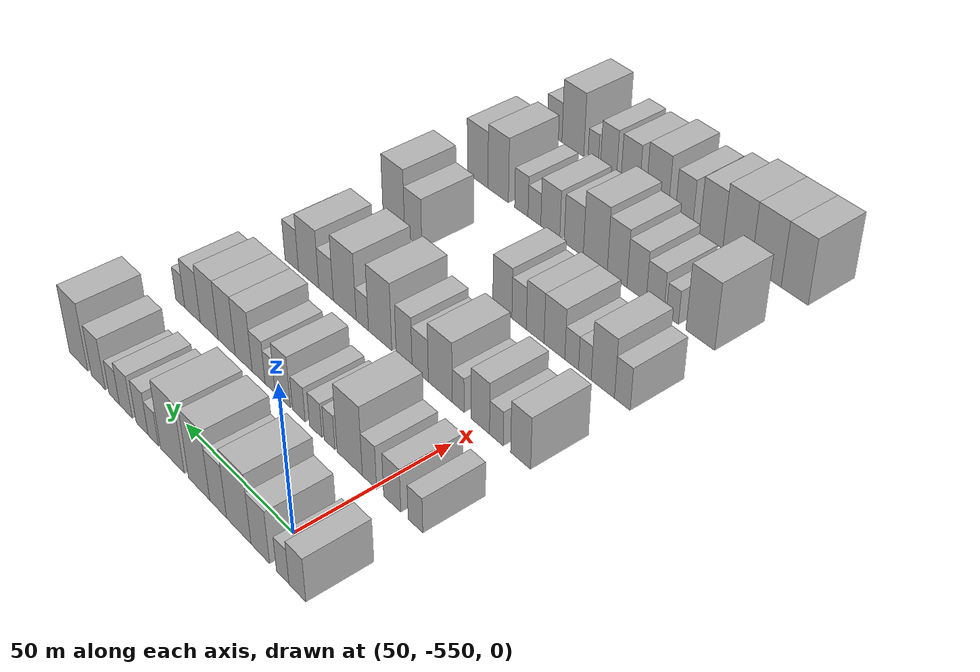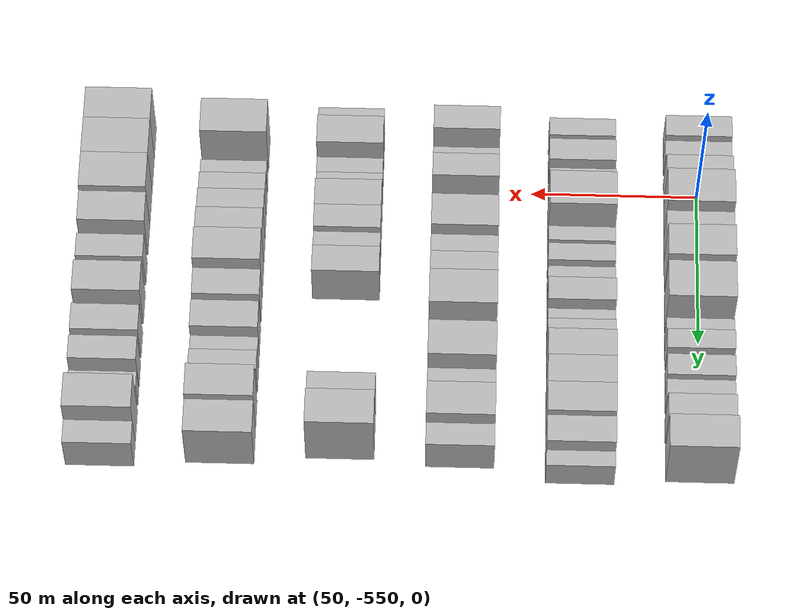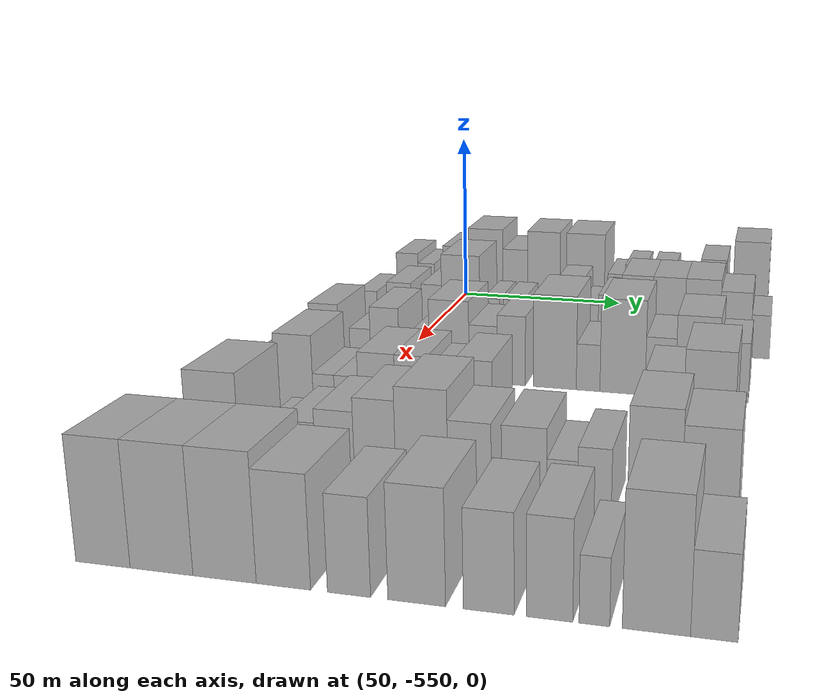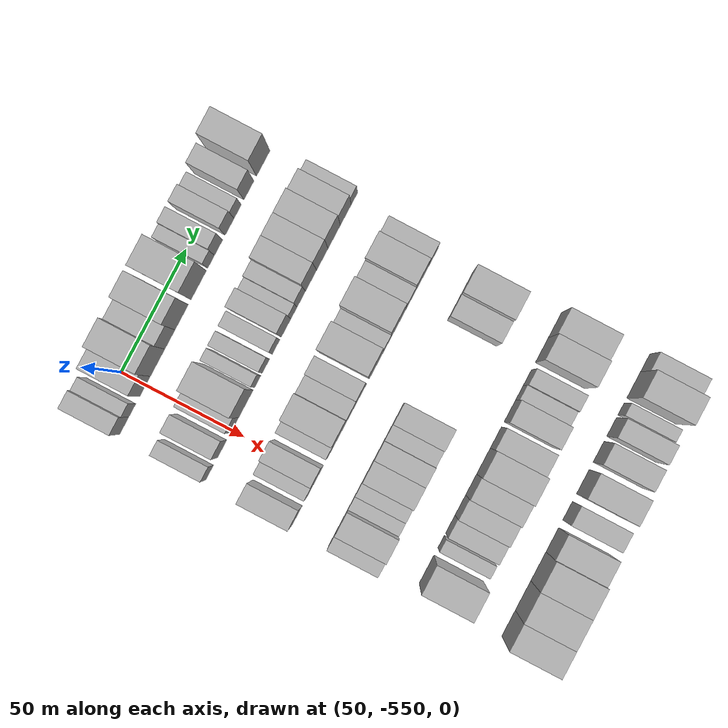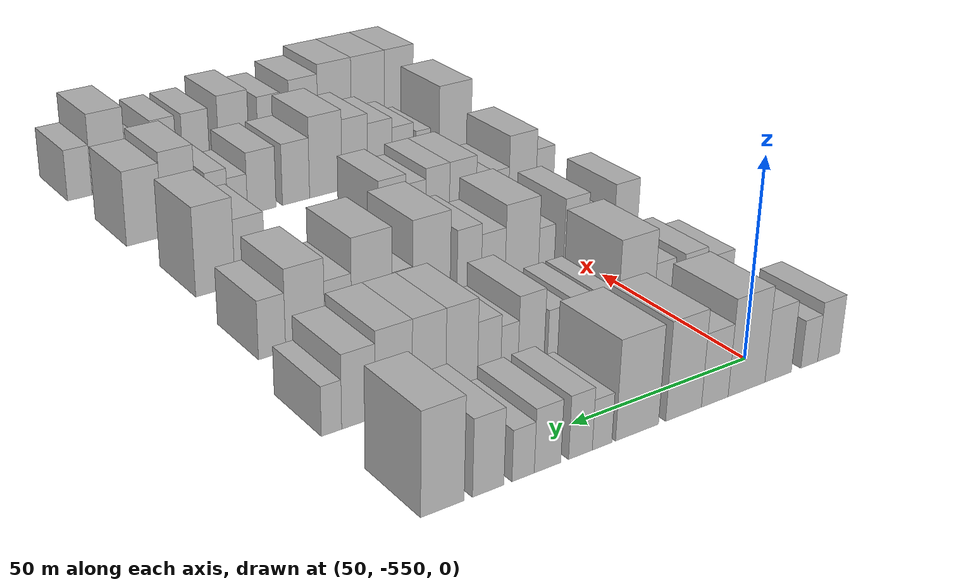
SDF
<sdf version="1.6">
 <world name="default">
  <model name="building_1">
   <static>1</static>
   <pose>50.0000 -566.4650 0 0.000000 0.000000 0.000000</pose>
   <link name="link">
    <pose>0 0 7.50 0 0 0</pose>
    <collision name="collision"><geometry><box><size>20.0000 7.0700 15.0000</size></box></geometry></collision>
    <visual name="visual">
     <cast_shadows>0</cast_shadows>
     <geometry><box><size>20.0000 7.0700 15.0000</size></box></geometry>
     <material>
      <script>
       <uri>model://HANNAS_wall/materials/scripts</uri>
       <uri>model://HANNAS_wall/materials/textures</uri>
       <name>vrc/HANNAS_wall</name>
      </script>
     </material>
    </visual>
   </link>
  </model>
  <model name="building_2">
   <static>1</static>
   <pose>50.0000 -560.2530 0 0.000000 0.000000 0.000000</pose>
   <link name="link">
    <pose>0 0 6.00 0 0 0</pose>
    <collision name="collision"><geometry><box><size>20.0000 5.3539 12.0000</size></box></geometry></collision>
    <visual name="visual">
     <cast_shadows>0</cast_shadows>
     <geometry><box><size>20.0000 5.3539 12.0000</size></box></geometry>
     <material>
      <script>
       <uri>model://HANNAS_wall/materials/scripts</uri>
       <uri>model://HANNAS_wall/materials/textures</uri>
       <name>vrc/HANNAS_wall</name>
      </script>
     </material>
    </visual>
   </link>
  </model>
  <model name="building_3">
   <static>1</static>
   <pose>50.0000 -550.4912 0 0.000000 0.000000 0.000000</pose>
   <link name="link">
    <pose>0 0 9.00 0 0 0</pose>
    <collision name="collision"><geometry><box><size>20.0000 8.1696 18.0000</size></box></geometry></collision>
    <visual name="visual">
     <cast_shadows>0</cast_shadows>
     <geometry><box><size>20.0000 8.1696 18.0000</size></box></geometry>
     <material>
      <script>
       <uri>model://HANNAS_wall/materials/scripts</uri>
       <uri>model://HANNAS_wall/materials/textures</uri>
       <name>vrc/HANNAS_wall</name>
      </script>
     </material>
    </visual>
   </link>
  </model>
  <model name="building_4">
   <static>1</static>
   <pose>50.0000 -540.8610 0 0.000000 0.000000 0.000000</pose>
   <link name="link">
    <pose>0 0 12.00 0 0 0</pose>
    <collision name="collision"><geometry><box><size>20.0000 11.0907 24.0000</size></box></geometry></collision>
    <visual name="visual">
     <cast_shadows>0</cast_shadows>
     <geometry><box><size>20.0000 11.0907 24.0000</size></box></geometry>
     <material>
      <script>
       <uri>model://HANNAS_wall/materials/scripts</uri>
       <uri>model://HANNAS_wall/materials/textures</uri>
       <name>vrc/HANNAS_wall</name>
      </script>
     </material>
    </visual>
   </link>
  </model>
  <model name="building_5">
   <static>1</static>
   <pose>50.0000 -531.4017 0 0.000000 0.000000 0.000000</pose>
   <link name="link">
    <pose>0 0 9.00 0 0 0</pose>
    <collision name="collision"><geometry><box><size>20.0000 7.8280 18.0000</size></box></geometry></collision>
    <visual name="visual">
     <cast_shadows>0</cast_shadows>
     <geometry><box><size>20.0000 7.8280 18.0000</size></box></geometry>
     <material>
      <script>
       <uri>model://HANNAS_wall/materials/scripts</uri>
       <uri>model://HANNAS_wall/materials/textures</uri>
       <name>vrc/HANNAS_wall</name>
      </script>
     </material>
    </visual>
   </link>
  </model>
  <model name="building_6">
   <static>1</static>
   <pose>50.0000 -522.3789 0 0.000000 0.000000 0.000000</pose>
   <link name="link">
    <pose>0 0 12.00 0 0 0</pose>
    <collision name="collision"><geometry><box><size>20.0000 10.2176 24.0000</size></box></geometry></collision>
    <visual name="visual">
     <cast_shadows>0</cast_shadows>
     <geometry><box><size>20.0000 10.2176 24.0000</size></box></geometry>
     <material>
      <script>
       <uri>model://HANNAS_wall/materials/scripts</uri>
       <uri>model://HANNAS_wall/materials/textures</uri>
       <name>vrc/HANNAS_wall</name>
      </script>
     </material>
    </visual>
   </link>
  </model>
  <model name="building_7">
   <static>1</static>
   <pose>50.0000 -509.3634 0 0.000000 0.000000 0.000000</pose>
   <link name="link">
    <pose>0 0 12.00 0 0 0</pose>
    <collision name="collision"><geometry><box><size>20.0000 11.8134 24.0000</size></box></geometry></collision>
    <visual name="visual">
     <cast_shadows>0</cast_shadows>
     <geometry><box><size>20.0000 11.8134 24.0000</size></box></geometry>
     <material>
      <script>
       <uri>model://HANNAS_wall/materials/scripts</uri>
       <uri>model://HANNAS_wall/materials/textures</uri>
       <name>vrc/HANNAS_wall</name>
      </script>
     </material>
    </visual>
   </link>
  </model>
  <model name="building_8">
   <static>1</static>
   <pose>50.0000 -499.8393 0 0.000000 0.000000 0.000000</pose>
   <link name="link">
    <pose>0 0 6.00 0 0 0</pose>
    <collision name="collision"><geometry><box><size>20.0000 5.2347 12.0000</size></box></geometry></collision>
    <visual name="visual">
     <cast_shadows>0</cast_shadows>
     <geometry><box><size>20.0000 5.2347 12.0000</size></box></geometry>
     <material>
      <script>
       <uri>model://HANNAS_wall/materials/scripts</uri>
       <uri>model://HANNAS_wall/materials/textures</uri>
       <name>vrc/HANNAS_wall</name>
      </script>
     </material>
    </visual>
   </link>
  </model>
  <model name="building_9">
   <static>1</static>
   <pose>50.0000 -494.1050 0 0.000000 0.000000 0.000000</pose>
   <link name="link">
    <pose>0 0 7.50 0 0 0</pose>
    <collision name="collision"><geometry><box><size>20.0000 6.2340 15.0000</size></box></geometry></collision>
    <visual name="visual">
     <cast_shadows>0</cast_shadows>
     <geometry><box><size>20.0000 6.2340 15.0000</size></box></geometry>
     <material>
      <script>
       <uri>model://HANNAS_wall/materials/scripts</uri>
       <uri>model://HANNAS_wall/materials/textures</uri>
       <name>vrc/HANNAS_wall</name>
      </script>
     </material>
    </visual>
   </link>
  </model>
  <model name="building_10">
   <static>1</static>
   <pose>50.0000 -485.5858 0 0.000000 0.000000 0.000000</pose>
   <link name="link">
    <pose>0 0 7.50 0 0 0</pose>
    <collision name="collision"><geometry><box><size>20.0000 6.8043 15.0000</size></box></geometry></collision>
    <visual name="visual">
     <cast_shadows>0</cast_shadows>
     <geometry><box><size>20.0000 6.8043 15.0000</size></box></geometry>
     <material>
      <script>
       <uri>model://HANNAS_wall/materials/scripts</uri>
       <uri>model://HANNAS_wall/materials/textures</uri>
       <name>vrc/HANNAS_wall</name>
      </script>
     </material>
    </visual>
   </link>
  </model>
  <model name="building_11">
   <static>1</static>
   <pose>50.0000 -479.3837 0 0.000000 0.000000 0.000000</pose>
   <link name="link">
    <pose>0 0 6.00 0 0 0</pose>
    <collision name="collision"><geometry><box><size>20.0000 5.6000 12.0000</size></box></geometry></collision>
    <visual name="visual">
     <cast_shadows>0</cast_shadows>
     <geometry><box><size>20.0000 5.6000 12.0000</size></box></geometry>
     <material>
      <script>
       <uri>model://HANNAS_wall/materials/scripts</uri>
       <uri>model://HANNAS_wall/materials/textures</uri>
       <name>vrc/HANNAS_wall</name>
      </script>
     </material>
    </visual>
   </link>
  </model>
  <model name="building_12">
   <static>1</static>
   <pose>50.0000 -470.7402 0 0.000000 0.000000 0.000000</pose>
   <link name="link">
    <pose>0 0 9.00 0 0 0</pose>
    <collision name="collision"><geometry><box><size>20.0000 7.6870 18.0000</size></box></geometry></collision>
    <visual name="visual">
     <cast_shadows>0</cast_shadows>
     <geometry><box><size>20.0000 7.6870 18.0000</size></box></geometry>
     <material>
      <script>
       <uri>model://HANNAS_wall/materials/scripts</uri>
       <uri>model://HANNAS_wall/materials/textures</uri>
       <name>vrc/HANNAS_wall</name>
      </script>
     </material>
    </visual>
   </link>
  </model>
  <model name="building_13">
   <static>1</static>
   <pose>50.0000 -459.7438 0 0.000000 0.000000 0.000000</pose>
   <link name="link">
    <pose>0 0 12.00 0 0 0</pose>
    <collision name="collision"><geometry><box><size>20.0000 10.3056 24.0000</size></box></geometry></collision>
    <visual name="visual">
     <cast_shadows>0</cast_shadows>
     <geometry><box><size>20.0000 10.3056 24.0000</size></box></geometry>
     <material>
      <script>
       <uri>model://HANNAS_wall/materials/scripts</uri>
       <uri>model://HANNAS_wall/materials/textures</uri>
       <name>vrc/HANNAS_wall</name>
      </script>
     </material>
    </visual>
   </link>
  </model>
  <model name="building_121">
   <static>1</static>
   <pose>85.0000 -567.0077 0 0.000000 0.000000 0.000000</pose>
   <link name="link">
    <pose>0 0 6.00 0 0 0</pose>
    <collision name="collision"><geometry><box><size>20.0000 5.9846 12.0000</size></box></geometry></collision>
    <visual name="visual">
     <cast_shadows>0</cast_shadows>
     <geometry><box><size>20.0000 5.9846 12.0000</size></box></geometry>
     <material>
      <script>
       <uri>model://HANNAS_wall/materials/scripts</uri>
       <uri>model://HANNAS_wall/materials/textures</uri>
       <name>vrc/HANNAS_wall</name>
      </script>
     </material>
    </visual>
   </link>
  </model>
  <model name="building_122">
   <static>1</static>
   <pose>85.0000 -557.4133 0 0.000000 0.000000 0.000000</pose>
   <link name="link">
    <pose>0 0 7.50 0 0 0</pose>
    <collision name="collision"><geometry><box><size>20.0000 7.2042 15.0000</size></box></geometry></collision>
    <visual name="visual">
     <cast_shadows>0</cast_shadows>
     <geometry><box><size>20.0000 7.2042 15.0000</size></box></geometry>
     <material>
      <script>
       <uri>model://HANNAS_wall/materials/scripts</uri>
       <uri>model://HANNAS_wall/materials/textures</uri>
       <name>vrc/HANNAS_wall</name>
      </script>
     </material>
    </visual>
   </link>
  </model>
  <model name="building_123">
   <static>1</static>
   <pose>85.0000 -547.7533 0 0.000000 0.000000 0.000000</pose>
   <link name="link">
    <pose>0 0 7.50 0 0 0</pose>
    <collision name="collision"><geometry><box><size>20.0000 6.1158 15.0000</size></box></geometry></collision>
    <visual name="visual">
     <cast_shadows>0</cast_shadows>
     <geometry><box><size>20.0000 6.1158 15.0000</size></box></geometry>
     <material>
      <script>
       <uri>model://HANNAS_wall/materials/scripts</uri>
       <uri>model://HANNAS_wall/materials/textures</uri>
       <name>vrc/HANNAS_wall</name>
      </script>
     </material>
    </visual>
   </link>
  </model>
  <model name="building_124">
   <static>1</static>
   <pose>85.0000 -539.1208 0 0.000000 0.000000 0.000000</pose>
   <link name="link">
    <pose>0 0 12.00 0 0 0</pose>
    <collision name="collision"><geometry><box><size>20.0000 11.1494 24.0000</size></box></geometry></collision>
    <visual name="visual">
     <cast_shadows>0</cast_shadows>
     <geometry><box><size>20.0000 11.1494 24.0000</size></box></geometry>
     <material>
      <script>
       <uri>model://HANNAS_wall/materials/scripts</uri>
       <uri>model://HANNAS_wall/materials/textures</uri>
       <name>vrc/HANNAS_wall</name>
      </script>
     </material>
    </visual>
   </link>
  </model>
  <model name="building_125">
   <static>1</static>
   <pose>85.0000 -530.1311 0 0.000000 0.000000 0.000000</pose>
   <link name="link">
    <pose>0 0 6.00 0 0 0</pose>
    <collision name="collision"><geometry><box><size>20.0000 4.8299 12.0000</size></box></geometry></collision>
    <visual name="visual">
     <cast_shadows>0</cast_shadows>
     <geometry><box><size>20.0000 4.8299 12.0000</size></box></geometry>
     <material>
      <script>
       <uri>model://HANNAS_wall/materials/scripts</uri>
       <uri>model://HANNAS_wall/materials/textures</uri>
       <name>vrc/HANNAS_wall</name>
      </script>
     </material>
    </visual>
   </link>
  </model>
  <model name="building_126">
   <static>1</static>
   <pose>85.0000 -523.8381 0 0.000000 0.000000 0.000000</pose>
   <link name="link">
    <pose>0 0 6.00 0 0 0</pose>
    <collision name="collision"><geometry><box><size>20.0000 5.7561 12.0000</size></box></geometry></collision>
    <visual name="visual">
     <cast_shadows>0</cast_shadows>
     <geometry><box><size>20.0000 5.7561 12.0000</size></box></geometry>
     <material>
      <script>
       <uri>model://HANNAS_wall/materials/scripts</uri>
       <uri>model://HANNAS_wall/materials/textures</uri>
       <name>vrc/HANNAS_wall</name>
      </script>
     </material>
    </visual>
   </link>
  </model>
  <model name="building_127">
   <static>1</static>
   <pose>85.0000 -516.0000 0 0.000000 0.000000 0.000000</pose>
   <link name="link">
    <pose>0 0 6.00 0 0 0</pose>
    <collision name="collision"><geometry><box><size>20.0000 5.9202 12.0000</size></box></geometry></collision>
    <visual name="visual">
     <cast_shadows>0</cast_shadows>
     <geometry><box><size>20.0000 5.9202 12.0000</size></box></geometry>
     <material>
      <script>
       <uri>model://HANNAS_wall/materials/scripts</uri>
       <uri>model://HANNAS_wall/materials/textures</uri>
       <name>vrc/HANNAS_wall</name>
      </script>
     </material>
    </visual>
   </link>
  </model>
  <model name="building_128">
   <static>1</static>
   <pose>85.0000 -508.3366 0 0.000000 0.000000 0.000000</pose>
   <link name="link">
    <pose>0 0 9.00 0 0 0</pose>
    <collision name="collision"><geometry><box><size>20.0000 7.4066 18.0000</size></box></geometry></collision>
    <visual name="visual">
     <cast_shadows>0</cast_shadows>
     <geometry><box><size>20.0000 7.4066 18.0000</size></box></geometry>
     <material>
      <script>
       <uri>model://HANNAS_wall/materials/scripts</uri>
       <uri>model://HANNAS_wall/materials/textures</uri>
       <name>vrc/HANNAS_wall</name>
      </script>
     </material>
    </visual>
   </link>
  </model>
  <model name="building_129">
   <static>1</static>
   <pose>85.0000 -502.2137 0 0.000000 0.000000 0.000000</pose>
   <link name="link">
    <pose>0 0 6.00 0 0 0</pose>
    <collision name="collision"><geometry><box><size>20.0000 4.8391 12.0000</size></box></geometry></collision>
    <visual name="visual">
     <cast_shadows>0</cast_shadows>
     <geometry><box><size>20.0000 4.8391 12.0000</size></box></geometry>
     <material>
      <script>
       <uri>model://HANNAS_wall/materials/scripts</uri>
       <uri>model://HANNAS_wall/materials/textures</uri>
       <name>vrc/HANNAS_wall</name>
      </script>
     </material>
    </visual>
   </link>
  </model>
  <model name="building_130">
   <static>1</static>
   <pose>85.0000 -496.5951 0 0.000000 0.000000 0.000000</pose>
   <link name="link">
    <pose>0 0 7.50 0 0 0</pose>
    <collision name="collision"><geometry><box><size>20.0000 6.3980 15.0000</size></box></geometry></collision>
    <visual name="visual">
     <cast_shadows>0</cast_shadows>
     <geometry><box><size>20.0000 6.3980 15.0000</size></box></geometry>
     <material>
      <script>
       <uri>model://HANNAS_wall/materials/scripts</uri>
       <uri>model://HANNAS_wall/materials/textures</uri>
       <name>vrc/HANNAS_wall</name>
      </script>
     </material>
    </visual>
   </link>
  </model>
  <model name="building_131">
   <static>1</static>
   <pose>85.0000 -489.1297 0 0.000000 0.000000 0.000000</pose>
   <link name="link">
    <pose>0 0 10.50 0 0 0</pose>
    <collision name="collision"><geometry><box><size>20.0000 8.5328 21.0000</size></box></geometry></collision>
    <visual name="visual">
     <cast_shadows>0</cast_shadows>
     <geometry><box><size>20.0000 8.5328 21.0000</size></box></geometry>
     <material>
      <script>
       <uri>model://HANNAS_wall/materials/scripts</uri>
       <uri>model://HANNAS_wall/materials/textures</uri>
       <name>vrc/HANNAS_wall</name>
      </script>
     </material>
    </visual>
   </link>
  </model>
  <model name="building_132">
   <static>1</static>
   <pose>85.0000 -480.4655 0 0.000000 0.000000 0.000000</pose>
   <link name="link">
    <pose>0 0 10.50 0 0 0</pose>
    <collision name="collision"><geometry><box><size>20.0000 8.7956 21.0000</size></box></geometry></collision>
    <visual name="visual">
     <cast_shadows>0</cast_shadows>
     <geometry><box><size>20.0000 8.7956 21.0000</size></box></geometry>
     <material>
      <script>
       <uri>model://HANNAS_wall/materials/scripts</uri>
       <uri>model://HANNAS_wall/materials/textures</uri>
       <name>vrc/HANNAS_wall</name>
      </script>
     </material>
    </visual>
   </link>
  </model>
  <model name="building_133">
   <static>1</static>
   <pose>85.0000 -471.3481 0 0.000000 0.000000 0.000000</pose>
   <link name="link">
    <pose>0 0 10.50 0 0 0</pose>
    <collision name="collision"><geometry><box><size>20.0000 9.4392 21.0000</size></box></geometry></collision>
    <visual name="visual">
     <cast_shadows>0</cast_shadows>
     <geometry><box><size>20.0000 9.4392 21.0000</size></box></geometry>
     <material>
      <script>
       <uri>model://HANNAS_wall/materials/scripts</uri>
       <uri>model://HANNAS_wall/materials/textures</uri>
       <name>vrc/HANNAS_wall</name>
      </script>
     </material>
    </visual>
   </link>
  </model>
  <model name="building_134">
   <static>1</static>
   <pose>85.0000 -462.4477 0 0.000000 0.000000 0.000000</pose>
   <link name="link">
    <pose>0 0 9.00 0 0 0</pose>
    <collision name="collision"><geometry><box><size>20.0000 8.3616 18.0000</size></box></geometry></collision>
    <visual name="visual">
     <cast_shadows>0</cast_shadows>
     <geometry><box><size>20.0000 8.3616 18.0000</size></box></geometry>
     <material>
      <script>
       <uri>model://HANNAS_wall/materials/scripts</uri>
       <uri>model://HANNAS_wall/materials/textures</uri>
       <name>vrc/HANNAS_wall</name>
      </script>
     </material>
    </visual>
   </link>
  </model>
  <model name="building_135">
   <static>1</static>
   <pose>85.0000 -455.7711 0 0.000000 0.000000 0.000000</pose>
   <link name="link">
    <pose>0 0 6.00 0 0 0</pose>
    <collision name="collision"><geometry><box><size>20.0000 4.9917 12.0000</size></box></geometry></collision>
    <visual name="visual">
     <cast_shadows>0</cast_shadows>
     <geometry><box><size>20.0000 4.9917 12.0000</size></box></geometry>
     <material>
      <script>
       <uri>model://HANNAS_wall/materials/scripts</uri>
       <uri>model://HANNAS_wall/materials/textures</uri>
       <name>vrc/HANNAS_wall</name>
      </script>
     </material>
    </visual>
   </link>
  </model>
  <model name="building_244">
   <static>1</static>
   <pose>120.0000 -565.9971 0 0.000000 0.000000 0.000000</pose>
   <link name="link">
    <pose>0 0 9.00 0 0 0</pose>
    <collision name="collision"><geometry><box><size>20.0000 8.0059 18.0000</size></box></geometry></collision>
    <visual name="visual">
     <cast_shadows>0</cast_shadows>
     <geometry><box><size>20.0000 8.0059 18.0000</size></box></geometry>
     <material>
      <script>
       <uri>model://HANNAS_wall/materials/scripts</uri>
       <uri>model://HANNAS_wall/materials/textures</uri>
       <name>vrc/HANNAS_wall</name>
      </script>
     </material>
    </visual>
   </link>
  </model>
  <model name="building_245">
   <static>1</static>
   <pose>120.0000 -556.1825 0 0.000000 0.000000 0.000000</pose>
   <link name="link">
    <pose>0 0 6.00 0 0 0</pose>
    <collision name="collision"><geometry><box><size>20.0000 5.6234 12.0000</size></box></geometry></collision>
    <visual name="visual">
     <cast_shadows>0</cast_shadows>
     <geometry><box><size>20.0000 5.6234 12.0000</size></box></geometry>
     <material>
      <script>
       <uri>model://HANNAS_wall/materials/scripts</uri>
       <uri>model://HANNAS_wall/materials/textures</uri>
       <name>vrc/HANNAS_wall</name>
      </script>
     </material>
    </visual>
   </link>
  </model>
  <model name="building_246">
   <static>1</static>
   <pose>120.0000 -549.5215 0 0.000000 0.000000 0.000000</pose>
   <link name="link">
    <pose>0 0 9.00 0 0 0</pose>
    <collision name="collision"><geometry><box><size>20.0000 7.6986 18.0000</size></box></geometry></collision>
    <visual name="visual">
     <cast_shadows>0</cast_shadows>
     <geometry><box><size>20.0000 7.6986 18.0000</size></box></geometry>
     <material>
      <script>
       <uri>model://HANNAS_wall/materials/scripts</uri>
       <uri>model://HANNAS_wall/materials/textures</uri>
       <name>vrc/HANNAS_wall</name>
      </script>
     </material>
    </visual>
   </link>
  </model>
  <model name="building_247">
   <static>1</static>
   <pose>120.0000 -540.1420 0 0.000000 0.000000 0.000000</pose>
   <link name="link">
    <pose>0 0 6.00 0 0 0</pose>
    <collision name="collision"><geometry><box><size>20.0000 5.0602 12.0000</size></box></geometry></collision>
    <visual name="visual">
     <cast_shadows>0</cast_shadows>
     <geometry><box><size>20.0000 5.0602 12.0000</size></box></geometry>
     <material>
      <script>
       <uri>model://HANNAS_wall/materials/scripts</uri>
       <uri>model://HANNAS_wall/materials/textures</uri>
       <name>vrc/HANNAS_wall</name>
      </script>
     </material>
    </visual>
   </link>
  </model>
  <model name="building_248">
   <static>1</static>
   <pose>120.0000 -532.3767 0 0.000000 0.000000 0.000000</pose>
   <link name="link">
    <pose>0 0 10.50 0 0 0</pose>
    <collision name="collision"><geometry><box><size>20.0000 10.4704 21.0000</size></box></geometry></collision>
    <visual name="visual">
     <cast_shadows>0</cast_shadows>
     <geometry><box><size>20.0000 10.4704 21.0000</size></box></geometry>
     <material>
      <script>
       <uri>model://HANNAS_wall/materials/scripts</uri>
       <uri>model://HANNAS_wall/materials/textures</uri>
       <name>vrc/HANNAS_wall</name>
      </script>
     </material>
    </visual>
   </link>
  </model>
  <model name="building_249">
   <static>1</static>
   <pose>120.0000 -523.5001 0 0.000000 0.000000 0.000000</pose>
   <link name="link">
    <pose>0 0 7.50 0 0 0</pose>
    <collision name="collision"><geometry><box><size>20.0000 7.2828 15.0000</size></box></geometry></collision>
    <visual name="visual">
     <cast_shadows>0</cast_shadows>
     <geometry><box><size>20.0000 7.2828 15.0000</size></box></geometry>
     <material>
      <script>
       <uri>model://HANNAS_wall/materials/scripts</uri>
       <uri>model://HANNAS_wall/materials/textures</uri>
       <name>vrc/HANNAS_wall</name>
      </script>
     </material>
    </visual>
   </link>
  </model>
  <model name="building_250">
   <static>1</static>
   <pose>120.0000 -516.2054 0 0.000000 0.000000 0.000000</pose>
   <link name="link">
    <pose>0 0 9.00 0 0 0</pose>
    <collision name="collision"><geometry><box><size>20.0000 7.3066 18.0000</size></box></geometry></collision>
    <visual name="visual">
     <cast_shadows>0</cast_shadows>
     <geometry><box><size>20.0000 7.3066 18.0000</size></box></geometry>
     <material>
      <script>
       <uri>model://HANNAS_wall/materials/scripts</uri>
       <uri>model://HANNAS_wall/materials/textures</uri>
       <name>vrc/HANNAS_wall</name>
      </script>
     </material>
    </visual>
   </link>
  </model>
  <model name="building_251">
   <static>1</static>
   <pose>120.0000 -505.0666 0 0.000000 0.000000 0.000000</pose>
   <link name="link">
    <pose>0 0 12.00 0 0 0</pose>
    <collision name="collision"><geometry><box><size>20.0000 10.9710 24.0000</size></box></geometry></collision>
    <visual name="visual">
     <cast_shadows>0</cast_shadows>
     <geometry><box><size>20.0000 10.9710 24.0000</size></box></geometry>
     <material>
      <script>
       <uri>model://HANNAS_wall/materials/scripts</uri>
       <uri>model://HANNAS_wall/materials/textures</uri>
       <name>vrc/HANNAS_wall</name>
      </script>
     </material>
    </visual>
   </link>
  </model>
  <model name="building_252">
   <static>1</static>
   <pose>120.0000 -496.6197 0 0.000000 0.000000 0.000000</pose>
   <link name="link">
    <pose>0 0 6.00 0 0 0</pose>
    <collision name="collision"><geometry><box><size>20.0000 5.9229 12.0000</size></box></geometry></collision>
    <visual name="visual">
     <cast_shadows>0</cast_shadows>
     <geometry><box><size>20.0000 5.9229 12.0000</size></box></geometry>
     <material>
      <script>
       <uri>model://HANNAS_wall/materials/scripts</uri>
       <uri>model://HANNAS_wall/materials/textures</uri>
       <name>vrc/HANNAS_wall</name>
      </script>
     </material>
    </visual>
   </link>
  </model>
  <model name="building_253">
   <static>1</static>
   <pose>120.0000 -488.0682 0 0.000000 0.000000 0.000000</pose>
   <link name="link">
    <pose>0 0 12.00 0 0 0</pose>
    <collision name="collision"><geometry><box><size>20.0000 11.1801 24.0000</size></box></geometry></collision>
    <visual name="visual">
     <cast_shadows>0</cast_shadows>
     <geometry><box><size>20.0000 11.1801 24.0000</size></box></geometry>
     <material>
      <script>
       <uri>model://HANNAS_wall/materials/scripts</uri>
       <uri>model://HANNAS_wall/materials/textures</uri>
       <name>vrc/HANNAS_wall</name>
      </script>
     </material>
    </visual>
   </link>
  </model>
  <model name="building_254">
   <static>1</static>
   <pose>120.0000 -478.8063 0 0.000000 0.000000 0.000000</pose>
   <link name="link">
    <pose>0 0 7.50 0 0 0</pose>
    <collision name="collision"><geometry><box><size>20.0000 7.3438 15.0000</size></box></geometry></collision>
    <visual name="visual">
     <cast_shadows>0</cast_shadows>
     <geometry><box><size>20.0000 7.3438 15.0000</size></box></geometry>
     <material>
      <script>
       <uri>model://HANNAS_wall/materials/scripts</uri>
       <uri>model://HANNAS_wall/materials/textures</uri>
       <name>vrc/HANNAS_wall</name>
      </script>
     </material>
    </visual>
   </link>
  </model>
  <model name="building_255">
   <static>1</static>
   <pose>120.0000 -469.9217 0 0.000000 0.000000 0.000000</pose>
   <link name="link">
    <pose>0 0 10.50 0 0 0</pose>
    <collision name="collision"><geometry><box><size>20.0000 10.4254 21.0000</size></box></geometry></collision>
    <visual name="visual">
     <cast_shadows>0</cast_shadows>
     <geometry><box><size>20.0000 10.4254 21.0000</size></box></geometry>
     <material>
      <script>
       <uri>model://HANNAS_wall/materials/scripts</uri>
       <uri>model://HANNAS_wall/materials/textures</uri>
       <name>vrc/HANNAS_wall</name>
      </script>
     </material>
    </visual>
   </link>
  </model>
  <model name="building_256">
   <static>1</static>
   <pose>120.0000 -461.1677 0 0.000000 0.000000 0.000000</pose>
   <link name="link">
    <pose>0 0 7.50 0 0 0</pose>
    <collision name="collision"><geometry><box><size>20.0000 7.0825 15.0000</size></box></geometry></collision>
    <visual name="visual">
     <cast_shadows>0</cast_shadows>
     <geometry><box><size>20.0000 7.0825 15.0000</size></box></geometry>
     <material>
      <script>
       <uri>model://HANNAS_wall/materials/scripts</uri>
       <uri>model://HANNAS_wall/materials/textures</uri>
       <name>vrc/HANNAS_wall</name>
      </script>
     </material>
    </visual>
   </link>
  </model>
  <model name="building_376">
   <static>1</static>
   <pose>155.0000 -566.9062 0 0.000000 0.000000 0.000000</pose>
   <link name="link">
    <pose>0 0 7.50 0 0 0</pose>
    <collision name="collision"><geometry><box><size>20.0000 6.1877 15.0000</size></box></geometry></collision>
    <visual name="visual">
     <cast_shadows>0</cast_shadows>
     <geometry><box><size>20.0000 6.1877 15.0000</size></box></geometry>
     <material>
      <script>
       <uri>model://HANNAS_wall/materials/scripts</uri>
       <uri>model://HANNAS_wall/materials/textures</uri>
       <name>vrc/HANNAS_wall</name>
      </script>
     </material>
    </visual>
   </link>
  </model>
  <model name="building_377">
   <static>1</static>
   <pose>155.0000 -559.1406 0 0.000000 0.000000 0.000000</pose>
   <link name="link">
    <pose>0 0 10.50 0 0 0</pose>
    <collision name="collision"><geometry><box><size>20.0000 9.3434 21.0000</size></box></geometry></collision>
    <visual name="visual">
     <cast_shadows>0</cast_shadows>
     <geometry><box><size>20.0000 9.3434 21.0000</size></box></geometry>
     <material>
      <script>
       <uri>model://HANNAS_wall/materials/scripts</uri>
       <uri>model://HANNAS_wall/materials/textures</uri>
       <name>vrc/HANNAS_wall</name>
      </script>
     </material>
    </visual>
   </link>
  </model>
  <model name="building_378">
   <static>1</static>
   <pose>155.0000 -551.8834 0 0.000000 0.000000 0.000000</pose>
   <link name="link">
    <pose>0 0 6.00 0 0 0</pose>
    <collision name="collision"><geometry><box><size>20.0000 5.1710 12.0000</size></box></geometry></collision>
    <visual name="visual">
     <cast_shadows>0</cast_shadows>
     <geometry><box><size>20.0000 5.1710 12.0000</size></box></geometry>
     <material>
      <script>
       <uri>model://HANNAS_wall/materials/scripts</uri>
       <uri>model://HANNAS_wall/materials/textures</uri>
       <name>vrc/HANNAS_wall</name>
      </script>
     </material>
    </visual>
   </link>
  </model>
  <model name="building_379">
   <static>1</static>
   <pose>155.0000 -546.4406 0 0.000000 0.000000 0.000000</pose>
   <link name="link">
    <pose>0 0 6.00 0 0 0</pose>
    <collision name="collision"><geometry><box><size>20.0000 5.7145 12.0000</size></box></geometry></collision>
    <visual name="visual">
     <cast_shadows>0</cast_shadows>
     <geometry><box><size>20.0000 5.7145 12.0000</size></box></geometry>
     <material>
      <script>
       <uri>model://HANNAS_wall/materials/scripts</uri>
       <uri>model://HANNAS_wall/materials/textures</uri>
       <name>vrc/HANNAS_wall</name>
      </script>
     </material>
    </visual>
   </link>
  </model>
  <model name="building_380">
   <static>1</static>
   <pose>155.0000 -539.1959 0 0.000000 0.000000 0.000000</pose>
   <link name="link">
    <pose>0 0 9.00 0 0 0</pose>
    <collision name="collision"><geometry><box><size>20.0000 8.7748 18.0000</size></box></geometry></collision>
    <visual name="visual">
     <cast_shadows>0</cast_shadows>
     <geometry><box><size>20.0000 8.7748 18.0000</size></box></geometry>
     <material>
      <script>
       <uri>model://HANNAS_wall/materials/scripts</uri>
       <uri>model://HANNAS_wall/materials/textures</uri>
       <name>vrc/HANNAS_wall</name>
      </script>
     </material>
    </visual>
   </link>
  </model>
  <model name="building_381">
   <static>1</static>
   <pose>155.0000 -530.9807 0 0.000000 0.000000 0.000000</pose>
   <link name="link">
    <pose>0 0 9.00 0 0 0</pose>
    <collision name="collision"><geometry><box><size>20.0000 7.6556 18.0000</size></box></geometry></collision>
    <visual name="visual">
     <cast_shadows>0</cast_shadows>
     <geometry><box><size>20.0000 7.6556 18.0000</size></box></geometry>
     <material>
      <script>
       <uri>model://HANNAS_wall/materials/scripts</uri>
       <uri>model://HANNAS_wall/materials/textures</uri>
       <name>vrc/HANNAS_wall</name>
      </script>
     </material>
    </visual>
   </link>
  </model>
  <model name="building_382">
   <static>1</static>
   <pose>155.0000 -523.9910 0 0.000000 0.000000 0.000000</pose>
   <link name="link">
    <pose>0 0 7.50 0 0 0</pose>
    <collision name="collision"><geometry><box><size>20.0000 6.3239 15.0000</size></box></geometry></collision>
    <visual name="visual">
     <cast_shadows>0</cast_shadows>
     <geometry><box><size>20.0000 6.3239 15.0000</size></box></geometry>
     <material>
      <script>
       <uri>model://HANNAS_wall/materials/scripts</uri>
       <uri>model://HANNAS_wall/materials/textures</uri>
       <name>vrc/HANNAS_wall</name>
      </script>
     </material>
    </visual>
   </link>
  </model>
  <model name="building_383">
   <static>1</static>
   <pose>155.0000 -516.5709 0 0.000000 0.000000 0.000000</pose>
   <link name="link">
    <pose>0 0 9.00 0 0 0</pose>
    <collision name="collision"><geometry><box><size>20.0000 8.5163 18.0000</size></box></geometry></collision>
    <visual name="visual">
     <cast_shadows>0</cast_shadows>
     <geometry><box><size>20.0000 8.5163 18.0000</size></box></geometry>
     <material>
      <script>
       <uri>model://HANNAS_wall/materials/scripts</uri>
       <uri>model://HANNAS_wall/materials/textures</uri>
       <name>vrc/HANNAS_wall</name>
      </script>
     </material>
    </visual>
   </link>
  </model>
  <model name="building_384">
   <static>1</static>
   <pose>155.0000 -474.5777 0 0.000000 0.000000 0.000000</pose>
   <link name="link">
    <pose>0 0 9.00 0 0 0</pose>
    <collision name="collision"><geometry><box><size>20.0000 8.4900 18.0000</size></box></geometry></collision>
    <visual name="visual">
     <cast_shadows>0</cast_shadows>
     <geometry><box><size>20.0000 8.4900 18.0000</size></box></geometry>
     <material>
      <script>
       <uri>model://HANNAS_wall/materials/scripts</uri>
       <uri>model://HANNAS_wall/materials/textures</uri>
       <name>vrc/HANNAS_wall</name>
      </script>
     </material>
    </visual>
   </link>
  </model>
  <model name="building_385">
   <static>1</static>
   <pose>155.0000 -464.9130 0 0.000000 0.000000 0.000000</pose>
   <link name="link">
    <pose>0 0 12.00 0 0 0</pose>
    <collision name="collision"><geometry><box><size>20.0000 10.8395 24.0000</size></box></geometry></collision>
    <visual name="visual">
     <cast_shadows>0</cast_shadows>
     <geometry><box><size>20.0000 10.8395 24.0000</size></box></geometry>
     <material>
      <script>
       <uri>model://HANNAS_wall/materials/scripts</uri>
       <uri>model://HANNAS_wall/materials/textures</uri>
       <name>vrc/HANNAS_wall</name>
      </script>
     </material>
    </visual>
   </link>
  </model>
  <model name="building_497">
   <static>1</static>
   <pose>190.0000 -561.3066 0 0.000000 0.000000 0.000000</pose>
   <link name="link">
    <pose>0 0 12.00 0 0 0</pose>
    <collision name="collision"><geometry><box><size>20.0000 11.3867 24.0000</size></box></geometry></collision>
    <visual name="visual">
     <cast_shadows>0</cast_shadows>
     <geometry><box><size>20.0000 11.3867 24.0000</size></box></geometry>
     <material>
      <script>
       <uri>model://HANNAS_wall/materials/scripts</uri>
       <uri>model://HANNAS_wall/materials/textures</uri>
       <name>vrc/HANNAS_wall</name>
      </script>
     </material>
    </visual>
   </link>
  </model>
  <model name="building_498">
   <static>1</static>
   <pose>190.0000 -550.1297 0 0.000000 0.000000 0.000000</pose>
   <link name="link">
    <pose>0 0 6.00 0 0 0</pose>
    <collision name="collision"><geometry><box><size>20.0000 4.9671 12.0000</size></box></geometry></collision>
    <visual name="visual">
     <cast_shadows>0</cast_shadows>
     <geometry><box><size>20.0000 4.9671 12.0000</size></box></geometry>
     <material>
      <script>
       <uri>model://HANNAS_wall/materials/scripts</uri>
       <uri>model://HANNAS_wall/materials/textures</uri>
       <name>vrc/HANNAS_wall</name>
      </script>
     </material>
    </visual>
   </link>
  </model>
  <model name="building_499">
   <static>1</static>
   <pose>190.0000 -542.9979 0 0.000000 0.000000 0.000000</pose>
   <link name="link">
    <pose>0 0 7.50 0 0 0</pose>
    <collision name="collision"><geometry><box><size>20.0000 7.2965 15.0000</size></box></geometry></collision>
    <visual name="visual">
     <cast_shadows>0</cast_shadows>
     <geometry><box><size>20.0000 7.2965 15.0000</size></box></geometry>
     <material>
      <script>
       <uri>model://HANNAS_wall/materials/scripts</uri>
       <uri>model://HANNAS_wall/materials/textures</uri>
       <name>vrc/HANNAS_wall</name>
      </script>
     </material>
    </visual>
   </link>
  </model>
  <model name="building_500">
   <static>1</static>
   <pose>190.0000 -535.3014 0 0.000000 0.000000 0.000000</pose>
   <link name="link">
    <pose>0 0 9.00 0 0 0</pose>
    <collision name="collision"><geometry><box><size>20.0000 8.0965 18.0000</size></box></geometry></collision>
    <visual name="visual">
     <cast_shadows>0</cast_shadows>
     <geometry><box><size>20.0000 8.0965 18.0000</size></box></geometry>
     <material>
      <script>
       <uri>model://HANNAS_wall/materials/scripts</uri>
       <uri>model://HANNAS_wall/materials/textures</uri>
       <name>vrc/HANNAS_wall</name>
      </script>
     </material>
    </visual>
   </link>
  </model>
  <model name="building_501">
   <static>1</static>
   <pose>190.0000 -527.0025 0 0.000000 0.000000 0.000000</pose>
   <link name="link">
    <pose>0 0 10.50 0 0 0</pose>
    <collision name="collision"><geometry><box><size>20.0000 8.5014 21.0000</size></box></geometry></collision>
    <visual name="visual">
     <cast_shadows>0</cast_shadows>
     <geometry><box><size>20.0000 8.5014 21.0000</size></box></geometry>
     <material>
      <script>
       <uri>model://HANNAS_wall/materials/scripts</uri>
       <uri>model://HANNAS_wall/materials/textures</uri>
       <name>vrc/HANNAS_wall</name>
      </script>
     </material>
    </visual>
   </link>
  </model>
  <model name="building_502">
   <static>1</static>
   <pose>190.0000 -517.4923 0 0.000000 0.000000 0.000000</pose>
   <link name="link">
    <pose>0 0 12.00 0 0 0</pose>
    <collision name="collision"><geometry><box><size>20.0000 10.5191 24.0000</size></box></geometry></collision>
    <visual name="visual">
     <cast_shadows>0</cast_shadows>
     <geometry><box><size>20.0000 10.5191 24.0000</size></box></geometry>
     <material>
      <script>
       <uri>model://HANNAS_wall/materials/scripts</uri>
       <uri>model://HANNAS_wall/materials/textures</uri>
       <name>vrc/HANNAS_wall</name>
      </script>
     </material>
    </visual>
   </link>
  </model>
  <model name="building_503">
   <static>1</static>
   <pose>190.0000 -507.9293 0 0.000000 0.000000 0.000000</pose>
   <link name="link">
    <pose>0 0 9.00 0 0 0</pose>
    <collision name="collision"><geometry><box><size>20.0000 8.6068 18.0000</size></box></geometry></collision>
    <visual name="visual">
     <cast_shadows>0</cast_shadows>
     <geometry><box><size>20.0000 8.6068 18.0000</size></box></geometry>
     <material>
      <script>
       <uri>model://HANNAS_wall/materials/scripts</uri>
       <uri>model://HANNAS_wall/materials/textures</uri>
       <name>vrc/HANNAS_wall</name>
      </script>
     </material>
    </visual>
   </link>
  </model>
  <model name="building_504">
   <static>1</static>
   <pose>190.0000 -497.2303 0 0.000000 0.000000 0.000000</pose>
   <link name="link">
    <pose>0 0 9.00 0 0 0</pose>
    <collision name="collision"><geometry><box><size>20.0000 8.7912 18.0000</size></box></geometry></collision>
    <visual name="visual">
     <cast_shadows>0</cast_shadows>
     <geometry><box><size>20.0000 8.7912 18.0000</size></box></geometry>
     <material>
      <script>
       <uri>model://HANNAS_wall/materials/scripts</uri>
       <uri>model://HANNAS_wall/materials/textures</uri>
       <name>vrc/HANNAS_wall</name>
      </script>
     </material>
    </visual>
   </link>
  </model>
  <model name="building_505">
   <static>1</static>
   <pose>190.0000 -489.8549 0 0.000000 0.000000 0.000000</pose>
   <link name="link">
    <pose>0 0 6.00 0 0 0</pose>
    <collision name="collision"><geometry><box><size>20.0000 5.9596 12.0000</size></box></geometry></collision>
    <visual name="visual">
     <cast_shadows>0</cast_shadows>
     <geometry><box><size>20.0000 5.9596 12.0000</size></box></geometry>
     <material>
      <script>
       <uri>model://HANNAS_wall/materials/scripts</uri>
       <uri>model://HANNAS_wall/materials/textures</uri>
       <name>vrc/HANNAS_wall</name>
      </script>
     </material>
    </visual>
   </link>
  </model>
  <model name="building_506">
   <static>1</static>
   <pose>190.0000 -483.6798 0 0.000000 0.000000 0.000000</pose>
   <link name="link">
    <pose>0 0 7.50 0 0 0</pose>
    <collision name="collision"><geometry><box><size>20.0000 6.3907 15.0000</size></box></geometry></collision>
    <visual name="visual">
     <cast_shadows>0</cast_shadows>
     <geometry><box><size>20.0000 6.3907 15.0000</size></box></geometry>
     <material>
      <script>
       <uri>model://HANNAS_wall/materials/scripts</uri>
       <uri>model://HANNAS_wall/materials/textures</uri>
       <name>vrc/HANNAS_wall</name>
      </script>
     </material>
    </visual>
   </link>
  </model>
  <model name="building_507">
   <static>1</static>
   <pose>190.0000 -472.4819 0 0.000000 0.000000 0.000000</pose>
   <link name="link">
    <pose>0 0 12.00 0 0 0</pose>
    <collision name="collision"><geometry><box><size>20.0000 10.0052 24.0000</size></box></geometry></collision>
    <visual name="visual">
     <cast_shadows>0</cast_shadows>
     <geometry><box><size>20.0000 10.0052 24.0000</size></box></geometry>
     <material>
      <script>
       <uri>model://HANNAS_wall/materials/scripts</uri>
       <uri>model://HANNAS_wall/materials/textures</uri>
       <name>vrc/HANNAS_wall</name>
      </script>
     </material>
    </visual>
   </link>
  </model>
  <model name="building_508">
   <static>1</static>
   <pose>190.0000 -462.3376 0 0.000000 0.000000 0.000000</pose>
   <link name="link">
    <pose>0 0 10.50 0 0 0</pose>
    <collision name="collision"><geometry><box><size>20.0000 10.2834 21.0000</size></box></geometry></collision>
    <visual name="visual">
     <cast_shadows>0</cast_shadows>
     <geometry><box><size>20.0000 10.2834 21.0000</size></box></geometry>
     <material>
      <script>
       <uri>model://HANNAS_wall/materials/scripts</uri>
       <uri>model://HANNAS_wall/materials/textures</uri>
       <name>vrc/HANNAS_wall</name>
      </script>
     </material>
    </visual>
   </link>
  </model>
  <model name="building_625">
   <static>1</static>
   <pose>225.0000 -564.7275 0 0.000000 0.000000 0.000000</pose>
   <link name="link">
    <pose>0 0 12.00 0 0 0</pose>
    <collision name="collision"><geometry><box><size>20.0000 10.5450 24.0000</size></box></geometry></collision>
    <visual name="visual">
     <cast_shadows>0</cast_shadows>
     <geometry><box><size>20.0000 10.5450 24.0000</size></box></geometry>
     <material>
      <script>
       <uri>model://HANNAS_wall/materials/scripts</uri>
       <uri>model://HANNAS_wall/materials/textures</uri>
       <name>vrc/HANNAS_wall</name>
      </script>
     </material>
    </visual>
   </link>
  </model>
  <model name="building_626">
   <static>1</static>
   <pose>225.0000 -553.4877 0 0.000000 0.000000 0.000000</pose>
   <link name="link">
    <pose>0 0 12.00 0 0 0</pose>
    <collision name="collision"><geometry><box><size>20.0000 11.9347 24.0000</size></box></geometry></collision>
    <visual name="visual">
     <cast_shadows>0</cast_shadows>
     <geometry><box><size>20.0000 11.9347 24.0000</size></box></geometry>
     <material>
      <script>
       <uri>model://HANNAS_wall/materials/scripts</uri>
       <uri>model://HANNAS_wall/materials/textures</uri>
       <name>vrc/HANNAS_wall</name>
      </script>
     </material>
    </visual>
   </link>
  </model>
  <model name="building_627">
   <static>1</static>
   <pose>225.0000 -541.6576 0 0.000000 0.000000 0.000000</pose>
   <link name="link">
    <pose>0 0 12.00 0 0 0</pose>
    <collision name="collision"><geometry><box><size>20.0000 11.7253 24.0000</size></box></geometry></collision>
    <visual name="visual">
     <cast_shadows>0</cast_shadows>
     <geometry><box><size>20.0000 11.7253 24.0000</size></box></geometry>
     <material>
      <script>
       <uri>model://HANNAS_wall/materials/scripts</uri>
       <uri>model://HANNAS_wall/materials/textures</uri>
       <name>vrc/HANNAS_wall</name>
      </script>
     </material>
    </visual>
   </link>
  </model>
  <model name="building_628">
   <static>1</static>
   <pose>225.0000 -530.8824 0 0.000000 0.000000 0.000000</pose>
   <link name="link">
    <pose>0 0 10.50 0 0 0</pose>
    <collision name="collision"><geometry><box><size>20.0000 9.8252 21.0000</size></box></geometry></collision>
    <visual name="visual">
     <cast_shadows>0</cast_shadows>
     <geometry><box><size>20.0000 9.8252 21.0000</size></box></geometry>
     <material>
      <script>
       <uri>model://HANNAS_wall/materials/scripts</uri>
       <uri>model://HANNAS_wall/materials/textures</uri>
       <name>vrc/HANNAS_wall</name>
      </script>
     </material>
    </visual>
   </link>
  </model>
  <model name="building_629">
   <static>1</static>
   <pose>225.0000 -519.1722 0 0.000000 0.000000 0.000000</pose>
   <link name="link">
    <pose>0 0 9.00 0 0 0</pose>
    <collision name="collision"><geometry><box><size>20.0000 7.5951 18.0000</size></box></geometry></collision>
    <visual name="visual">
     <cast_shadows>0</cast_shadows>
     <geometry><box><size>20.0000 7.5951 18.0000</size></box></geometry>
     <material>
      <script>
       <uri>model://HANNAS_wall/materials/scripts</uri>
       <uri>model://HANNAS_wall/materials/textures</uri>
       <name>vrc/HANNAS_wall</name>
      </script>
     </material>
    </visual>
   </link>
  </model>
  <model name="building_630">
   <static>1</static>
   <pose>225.0000 -507.4255 0 0.000000 0.000000 0.000000</pose>
   <link name="link">
    <pose>0 0 10.50 0 0 0</pose>
    <collision name="collision"><geometry><box><size>20.0000 9.8983 21.0000</size></box></geometry></collision>
    <visual name="visual">
     <cast_shadows>0</cast_shadows>
     <geometry><box><size>20.0000 9.8983 21.0000</size></box></geometry>
     <material>
      <script>
       <uri>model://HANNAS_wall/materials/scripts</uri>
       <uri>model://HANNAS_wall/materials/textures</uri>
       <name>vrc/HANNAS_wall</name>
      </script>
     </material>
    </visual>
   </link>
  </model>
  <model name="building_631">
   <static>1</static>
   <pose>225.0000 -495.2450 0 0.000000 0.000000 0.000000</pose>
   <link name="link">
    <pose>0 0 9.00 0 0 0</pose>
    <collision name="collision"><geometry><box><size>20.0000 8.4628 18.0000</size></box></geometry></collision>
    <visual name="visual">
     <cast_shadows>0</cast_shadows>
     <geometry><box><size>20.0000 8.4628 18.0000</size></box></geometry>
     <material>
      <script>
       <uri>model://HANNAS_wall/materials/scripts</uri>
       <uri>model://HANNAS_wall/materials/textures</uri>
       <name>vrc/HANNAS_wall</name>
      </script>
     </material>
    </visual>
   </link>
  </model>
  <model name="building_632">
   <static>1</static>
   <pose>225.0000 -485.2144 0 0.000000 0.000000 0.000000</pose>
   <link name="link">
    <pose>0 0 9.00 0 0 0</pose>
    <collision name="collision"><geometry><box><size>20.0000 7.5984 18.0000</size></box></geometry></collision>
    <visual name="visual">
     <cast_shadows>0</cast_shadows>
     <geometry><box><size>20.0000 7.5984 18.0000</size></box></geometry>
     <material>
      <script>
       <uri>model://HANNAS_wall/materials/scripts</uri>
       <uri>model://HANNAS_wall/materials/textures</uri>
       <name>vrc/HANNAS_wall</name>
      </script>
     </material>
    </visual>
   </link>
  </model>
  <model name="building_633">
   <static>1</static>
   <pose>225.0000 -477.9595 0 0.000000 0.000000 0.000000</pose>
   <link name="link">
    <pose>0 0 6.00 0 0 0</pose>
    <collision name="collision"><geometry><box><size>20.0000 4.9116 12.0000</size></box></geometry></collision>
    <visual name="visual">
     <cast_shadows>0</cast_shadows>
     <geometry><box><size>20.0000 4.9116 12.0000</size></box></geometry>
     <material>
      <script>
       <uri>model://HANNAS_wall/materials/scripts</uri>
       <uri>model://HANNAS_wall/materials/textures</uri>
       <name>vrc/HANNAS_wall</name>
      </script>
     </material>
    </visual>
   </link>
  </model>
  <model name="building_634">
   <static>1</static>
   <pose>225.0000 -468.1634 0 0.000000 0.000000 0.000000</pose>
   <link name="link">
    <pose>0 0 12.00 0 0 0</pose>
    <collision name="collision"><geometry><box><size>20.0000 10.6806 24.0000</size></box></geometry></collision>
    <visual name="visual">
     <cast_shadows>0</cast_shadows>
     <geometry><box><size>20.0000 10.6806 24.0000</size></box></geometry>
     <material>
      <script>
       <uri>model://HANNAS_wall/materials/scripts</uri>
       <uri>model://HANNAS_wall/materials/textures</uri>
       <name>vrc/HANNAS_wall</name>
      </script>
     </material>
    </visual>
   </link>
  </model>
  <model name="building_635">
   <static>1</static>
   <pose>225.0000 -459.1799 0 0.000000 0.000000 0.000000</pose>
   <link name="link">
    <pose>0 0 7.50 0 0 0</pose>
    <collision name="collision"><geometry><box><size>20.0000 7.2863 15.0000</size></box></geometry></collision>
    <visual name="visual">
     <cast_shadows>0</cast_shadows>
     <geometry><box><size>20.0000 7.2863 15.0000</size></box></geometry>
     <material>
      <script>
       <uri>model://HANNAS_wall/materials/scripts</uri>
       <uri>model://HANNAS_wall/materials/textures</uri>
       <name>vrc/HANNAS_wall</name>
      </script>
     </material>
    </visual>
   </link>
  </model>
 </world>
</sdf>
